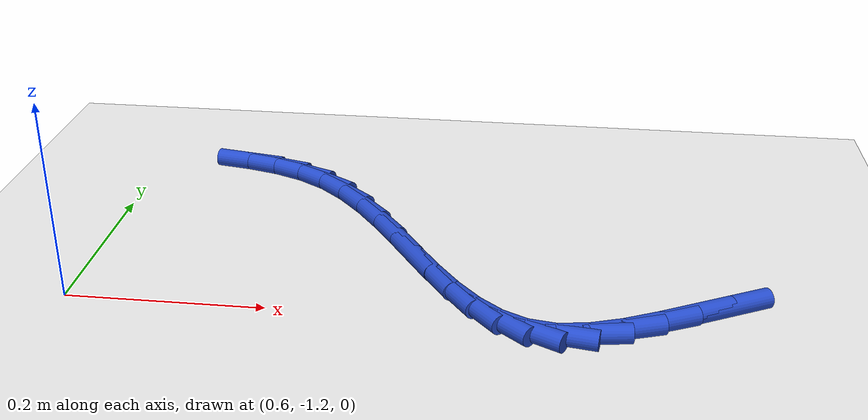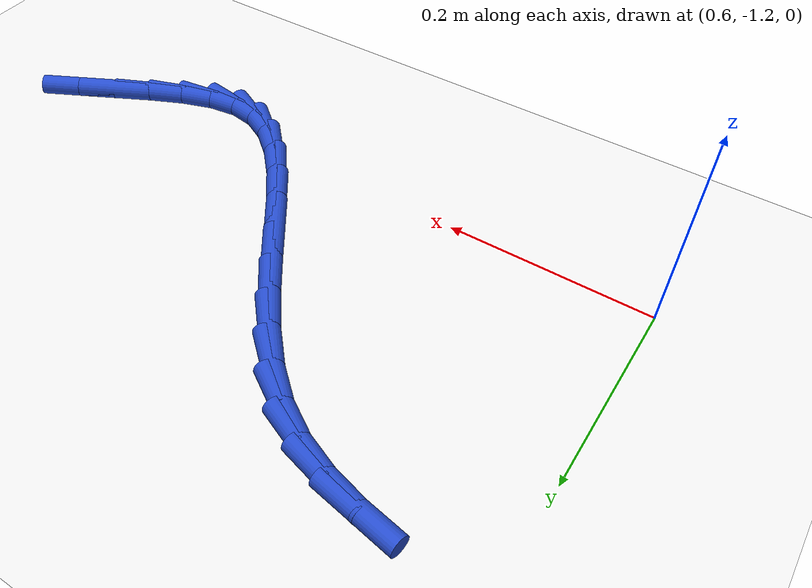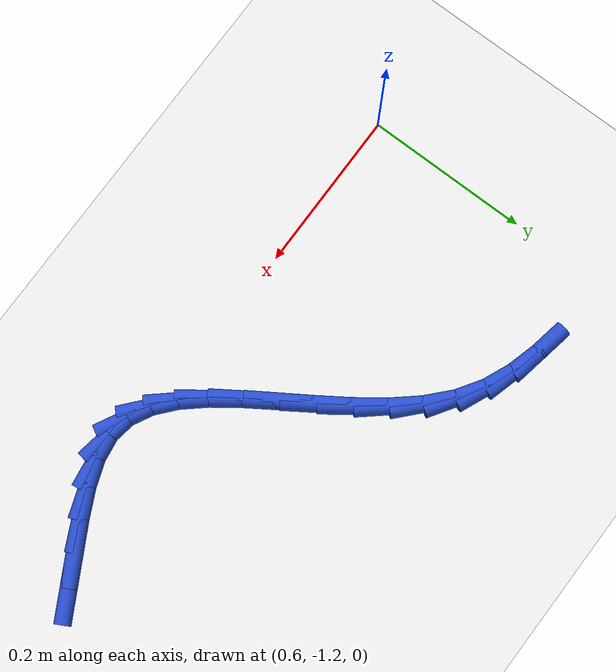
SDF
<sdf version="1.6">
 <world name="default">
  <model name="ground_plane">
   <static>1</static>
   <link name="link">
    <collision name="collision">
     <geometry><plane><normal>0 0 1</normal><size>100 100</size></plane></geometry>
     <surface><friction><ode><mu>100</mu><mu2>50</mu2></ode></friction></surface>
    </collision>
    <visual name="visual">
     <cast_shadows>0</cast_shadows>
     <geometry><plane><normal>0 0 1</normal><size>100 100</size></plane></geometry>
     <material>
      <script><uri>file://media/materials/scripts/gazebo.material</uri><name>Gazebo/WhiteGlow</name></script>
     </material>
    </visual>
   </link>
  </model>
  <model name="line">
   <link name="link_177">
    <pose>1.2408902019622579 -1.1569726165540641 0.01 0 1.57 0.49225611965513716</pose>
    <collision name="collision">
     <geometry><cylinder><radius>0.01</radius><length>0.08</length></cylinder></geometry>
    </collision>
    <visual name="visual">
     <material>
      <script><name>Gazebo/Blue</name><uri>file://media/materials/scripts/gazebo.material</uri></script>
     </material>
     <geometry><cylinder><radius>0.01</radius><length>0.08</length></cylinder></geometry>
    </visual>
   </link>
   <link name="link_178">
    <pose>1.205193639240304 -1.1761163131630032 0.01 0 1.57 0.4929765371899648</pose>
    <collision name="collision">
     <geometry><cylinder><radius>0.01</radius><length>0.08</length></cylinder></geometry>
    </collision>
    <visual name="visual">
     <material>
      <script><name>Gazebo/Blue</name><uri>file://media/materials/scripts/gazebo.material</uri></script>
     </material>
     <geometry><cylinder><radius>0.01</radius><length>0.08</length></cylinder></geometry>
    </visual>
   </link>
   <link name="link_179">
    <pose>1.1706353665906861 -1.1946816257492872 0.01 0 1.57 0.4467356602596263</pose>
    <collision name="collision">
     <geometry><cylinder><radius>0.01</radius><length>0.08</length></cylinder></geometry>
    </collision>
    <visual name="visual">
     <material>
      <script><name>Gazebo/Blue</name><uri>file://media/materials/scripts/gazebo.material</uri></script>
     </material>
     <geometry><cylinder><radius>0.01</radius><length>0.08</length></cylinder></geometry>
    </visual>
   </link>
   <link name="link_180">
    <pose>1.1374700877113562 -1.2105689664570594 0.01 0 1.57 0.3388955542824177</pose>
    <collision name="collision">
     <geometry><cylinder><radius>0.01</radius><length>0.08</length></cylinder></geometry>
    </collision>
    <visual name="visual">
     <material>
      <script><name>Gazebo/Blue</name><uri>file://media/materials/scripts/gazebo.material</uri></script>
     </material>
     <geometry><cylinder><radius>0.01</radius><length>0.08</length></cylinder></geometry>
    </visual>
   </link>
   <link name="link_181">
    <pose>1.105952506300263 -1.221678747430466 0.01 0 1.57 0.1419597070888266</pose>
    <collision name="collision">
     <geometry><cylinder><radius>0.01</radius><length>0.08</length></cylinder></geometry>
    </collision>
    <visual name="visual">
     <material>
      <script><name>Gazebo/Blue</name><uri>file://media/materials/scripts/gazebo.material</uri></script>
     </material>
     <geometry><cylinder><radius>0.01</radius><length>0.08</length></cylinder></geometry>
    </visual>
   </link>
   <link name="link_182">
    <pose>1.0763373260553566 -1.2259113808136524 0.01 0 1.57 -0.1652383900797332</pose>
    <collision name="collision">
     <geometry><cylinder><radius>0.01</radius><length>0.08</length></cylinder></geometry>
    </collision>
    <visual name="visual">
     <material>
      <script><name>Gazebo/Blue</name><uri>file://media/materials/scripts/gazebo.material</uri></script>
     </material>
     <geometry><cylinder><radius>0.01</radius><length>0.08</length></cylinder></geometry>
    </visual>
   </link>
   <link name="link_183">
    <pose>1.0488478335893634 -1.2213272640381263 0.01 0 1.57 -0.48101207158392717</pose>
    <collision name="collision">
     <geometry><cylinder><radius>0.01</radius><length>0.08</length></cylinder></geometry>
    </collision>
    <visual name="visual">
     <material>
      <script><name>Gazebo/Blue</name><uri>file://media/materials/scripts/gazebo.material</uri></script>
     </material>
     <geometry><cylinder><radius>0.01</radius><length>0.08</length></cylinder></geometry>
    </visual>
   </link>
   <link name="link_184">
    <pose>1.0233119455799855 -1.2080001376644074 0.01 0 1.57 -0.7093023829802051</pose>
    <collision name="collision">
     <geometry><cylinder><radius>0.01</radius><length>0.08</length></cylinder></geometry>
    </collision>
    <visual name="visual">
     <material>
      <script><name>Gazebo/Blue</name><uri>file://media/materials/scripts/gazebo.material</uri></script>
     </material>
     <geometry><cylinder><radius>0.01</radius><length>0.08</length></cylinder></geometry>
    </visual>
   </link>
   <link name="link_185">
    <pose>0.9992874163378354 -1.1873794906276798 0.01 0 1.57 -0.8556766093147031</pose>
    <collision name="collision">
     <geometry><cylinder><radius>0.01</radius><length>0.08</length></cylinder></geometry>
    </collision>
    <visual name="visual">
     <material>
      <script><name>Gazebo/Blue</name><uri>file://media/materials/scripts/gazebo.material</uri></script>
     </material>
     <geometry><cylinder><radius>0.01</radius><length>0.08</length></cylinder></geometry>
    </visual>
   </link>
   <link name="link_186">
    <pose>0.9763267685119349 -1.1609414530641489 0.01 0 1.57 -0.9428654559151126</pose>
    <collision name="collision">
     <geometry><cylinder><radius>0.01</radius><length>0.08</length></cylinder></geometry>
    </collision>
    <visual name="visual">
     <material>
      <script><name>Gazebo/Blue</name><uri>file://media/materials/scripts/gazebo.material</uri></script>
     </material>
     <geometry><cylinder><radius>0.01</radius><length>0.08</length></cylinder></geometry>
    </visual>
   </link>
   <link name="link_187">
    <pose>0.9539825247513047 -1.130162155110018 0.01 0 1.57 -0.9880448086576379</pose>
    <collision name="collision">
     <geometry><cylinder><radius>0.01</radius><length>0.08</length></cylinder></geometry>
    </collision>
    <visual name="visual">
     <material>
      <script><name>Gazebo/Blue</name><uri>file://media/materials/scripts/gazebo.material</uri></script>
     </material>
     <geometry><cylinder><radius>0.01</radius><length>0.08</length></cylinder></geometry>
    </visual>
   </link>
   <link name="link_188">
    <pose>0.9318072077049666 -1.096517726901492 0.01 0 1.57 -1.0008258283388562</pose>
    <collision name="collision">
     <geometry><cylinder><radius>0.01</radius><length>0.08</length></cylinder></geometry>
    </collision>
    <visual name="visual">
     <material>
      <script><name>Gazebo/Blue</name><uri>file://media/materials/scripts/gazebo.material</uri></script>
     </material>
     <geometry><cylinder><radius>0.01</radius><length>0.08</length></cylinder></geometry>
    </visual>
   </link>
   <link name="link_189">
    <pose>0.9093533400219427 -1.061484298574777 0.01 0 1.57 -0.9851277975251836</pose>
    <collision name="collision">
     <geometry><cylinder><radius>0.01</radius><length>0.08</length></cylinder></geometry>
    </collision>
    <visual name="visual">
     <material>
      <script><name>Gazebo/Blue</name><uri>file://media/materials/scripts/gazebo.material</uri></script>
     </material>
     <geometry><cylinder><radius>0.01</radius><length>0.08</length></cylinder></geometry>
    </visual>
   </link>
   <link name="link_190">
    <pose>0.8861734443512541 -1.0265380002660767 0.01 0 1.57 -0.9405355461104153</pose>
    <collision name="collision">
     <geometry><cylinder><radius>0.01</radius><length>0.08</length></cylinder></geometry>
    </collision>
    <visual name="visual">
     <material>
      <script><name>Gazebo/Blue</name><uri>file://media/materials/scripts/gazebo.material</uri></script>
     </material>
     <geometry><cylinder><radius>0.01</radius><length>0.08</length></cylinder></geometry>
    </visual>
   </link>
   <link name="link_191">
    <pose>0.8618200433419226 -0.9931549621115956 0.01 0 1.57 -0.8628250446300277</pose>
    <collision name="collision">
     <geometry><cylinder><radius>0.01</radius><length>0.08</length></cylinder></geometry>
    </collision>
    <visual name="visual">
     <material>
      <script><name>Gazebo/Blue</name><uri>file://media/materials/scripts/gazebo.material</uri></script>
     </material>
     <geometry><cylinder><radius>0.01</radius><length>0.08</length></cylinder></geometry>
    </visual>
   </link>
   <link name="link_192">
    <pose>0.835845659642969 -0.9628113142475381 0.01 0 1.57 -0.7443098039443957</pose>
    <collision name="collision">
     <geometry><cylinder><radius>0.01</radius><length>0.08</length></cylinder></geometry>
    </collision>
    <visual name="visual">
     <material>
      <script><name>Gazebo/Blue</name><uri>file://media/materials/scripts/gazebo.material</uri></script>
     </material>
     <geometry><cylinder><radius>0.01</radius><length>0.08</length></cylinder></geometry>
    </visual>
   </link>
   <link name="link_193">
    <pose>0.807802815903416 -0.93698318681011 0.01 0 1.57 -0.5781933077603786</pose>
    <collision name="collision">
     <geometry><cylinder><radius>0.01</radius><length>0.08</length></cylinder></geometry>
    </collision>
    <visual name="visual">
     <material>
      <script><name>Gazebo/Blue</name><uri>file://media/materials/scripts/gazebo.material</uri></script>
     </material>
     <geometry><cylinder><radius>0.01</radius><length>0.08</length></cylinder></geometry>
    </visual>
   </link>
   <link name="link_194">
    <pose>0.7772739256499556 -0.9170603599412669 0.01 0 1.57 -0.4053853671381194</pose>
    <collision name="collision">
     <geometry><cylinder><radius>0.01</radius><length>0.08</length></cylinder></geometry>
    </collision>
    <visual name="visual">
     <material>
      <script><name>Gazebo/Blue</name><uri>file://media/materials/scripts/gazebo.material</uri></script>
     </material>
     <geometry><cylinder><radius>0.01</radius><length>0.08</length></cylinder></geometry>
    </visual>
   </link>
   <link name="link_195">
    <pose>0.7443597919307421 -0.9029350688567485 0.01 0 1.57 -0.2722263851845035</pose>
    <collision name="collision">
     <geometry><cylinder><radius>0.01</radius><length>0.08</length></cylinder></geometry>
    </collision>
    <visual name="visual">
     <material>
      <script><name>Gazebo/Blue</name><uri>file://media/materials/scripts/gazebo.material</uri></script>
     </material>
     <geometry><cylinder><radius>0.01</radius><length>0.08</length></cylinder></geometry>
    </visual>
   </link>
   <link name="link_196">
    <pose>0.7096001044417783 -0.8932316750104586 0.01 0 1.57 -0.18367154939859834</pose>
    <collision name="collision">
     <geometry><cylinder><radius>0.01</radius><length>0.08</length></cylinder></geometry>
    </collision>
    <visual name="visual">
     <material>
      <script><name>Gazebo/Blue</name><uri>file://media/materials/scripts/gazebo.material</uri></script>
     </material>
     <geometry><cylinder><radius>0.01</radius><length>0.08</length></cylinder></geometry>
    </visual>
   </link>
  </model>
 </world>
</sdf>
